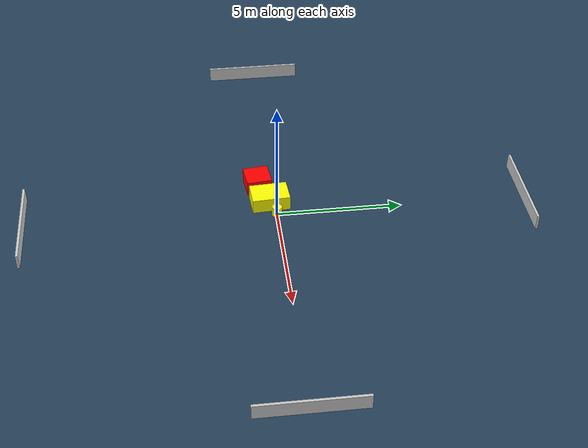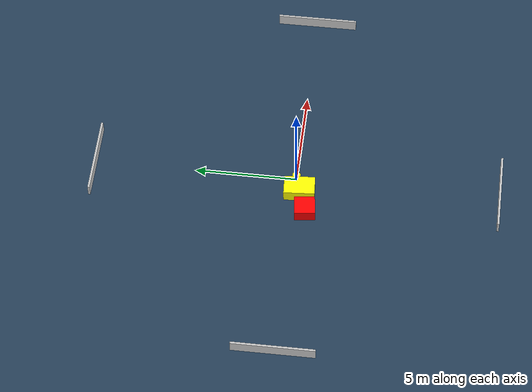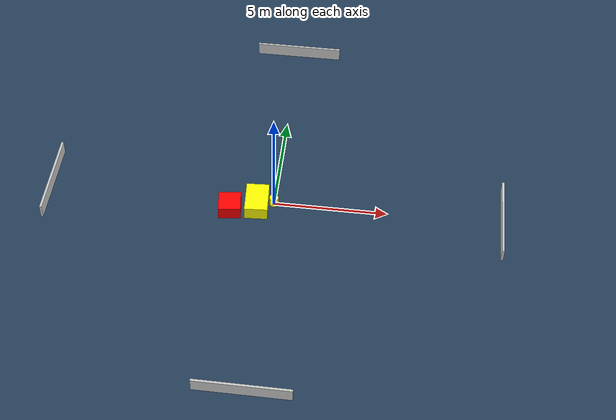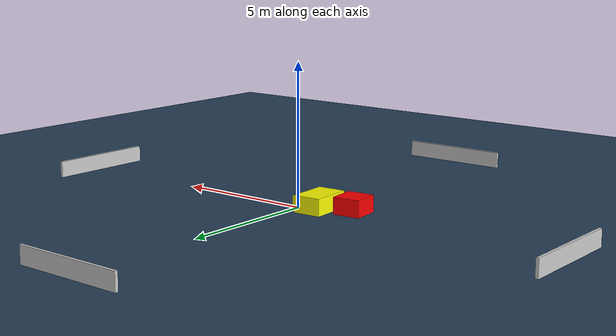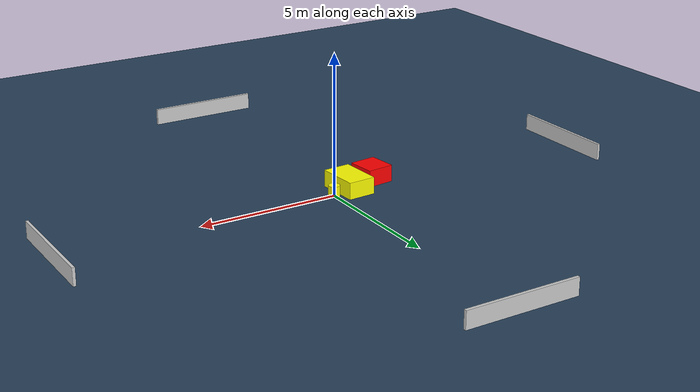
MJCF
<?xml version="1.0" ?>
<mujoco model="generated_environment">
  <option timestep="0.01" integrator="RK4" cone="elliptic"/>
  <default>
    <geom density="1"/>
  </default>
  <asset>
    <texture builtin="gradient" height="3072" name="skybox" rgb1="0.3 0.5 0.7" rgb2="0 0 0" type="skybox" width="512"/>
    <texture builtin="checker" height="300" name="groundplane" rgb1="0.2 0.3 0.4" rgb2="0.1 0.2 0.3" type="2d" width="300"/>
    <material name="groundplane" reflectance="0.2" texrepeat="5 5" texture="groundplane"/>
  </asset>
  <worldbody>
    <light dir="0 0 -1" directional="true" pos="0 0 1.5"/>
    <geom condim="3" friction="0.5 0.005 0.001" material="groundplane" name="floor" pos="0 0 0" size="0 0 0.05" type="plane"/>
    <body name="walls">
      <geom name="wall_1" condim="4" pos="-10.0 0.0 0.3" rgba="0.800000011920929 0.800000011920929 0.800000011920929 1.0" size="0.05 2.0 0.3" type="box"/>
      <geom name="wall_2" condim="4" pos="10.0 0.0 0.3" rgba="0.800000011920929 0.800000011920929 0.800000011920929 1.0" size="0.05 2.0 0.3" type="box"/>
      <geom name="wall_3" condim="4" pos="0.0 -10.0 0.3" rgba="0.800000011920929 0.800000011920929 0.800000011920929 1.0" size="2.0 0.05 0.3" type="box"/>
      <geom name="wall_4" condim="4" pos="0.0 10.0 0.3" rgba="0.800000011920929 0.800000011920929 0.800000011920929 1.0" size="2.0 0.05 0.3" type="box"/>
    </body>
    <body name="robot">
      <joint name="joint_x" type="slide" pos="0 0 0" axis="1 0 0"/>
      <joint name="joint_y" type="slide" pos="0 0 0" axis="0 1 0"/>
      <geom name="robot" type="cylinder" pos="0.0 0.0 0.2" size="0.2 0.2 0.0" mass="5.0" friction="1.0 0.005 0.0001" condim="4" rgba="1.0 1.0 0.0 1.0"/>
    </body>
    <body name="obstacle_1_movable">
      <geom name="obstacle_1_movable" condim="4" pos="-0.7292291048333255 -0.21917083066196325 0.3" euler="0 0 183.50692565429893" friction="0.0 0.005 0.001" rgba="1.0 1.0 0.0 1.0" size="0.5012288306137589 0.7566238897223707 0.3" type="box" mass="0.1"/>
      <joint type="free"/>
    </body>
    <body name="obstacle_2_static">
      <geom name="obstacle_2_static" condim="4" pos="-1.8833972320916035 -0.5976947369272995 0.3" euler="0 0 6.416157577685047" friction="0.0 0.005 0.001" rgba="1.0 0.0 0.0 1.0" size="0.4881221278734759 0.5055226486577675 0.3" type="box"/>
    </body>
  </worldbody>
  <actuator>
    <motor name="actuator_x" joint="joint_x" gear="1" ctrlrange="-1 1"/>
    <motor name="actuator_y" joint="joint_y" gear="1" ctrlrange="-1 1"/>
  </actuator>
</mujoco>
